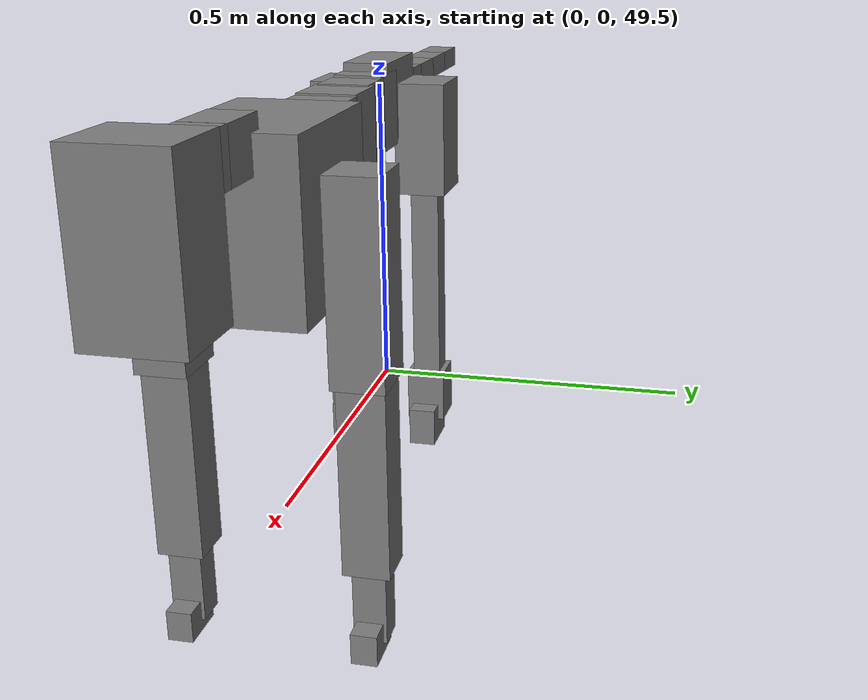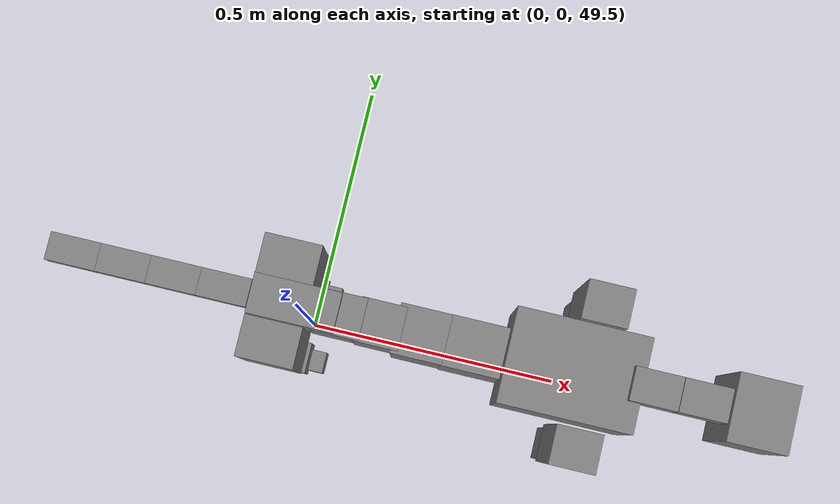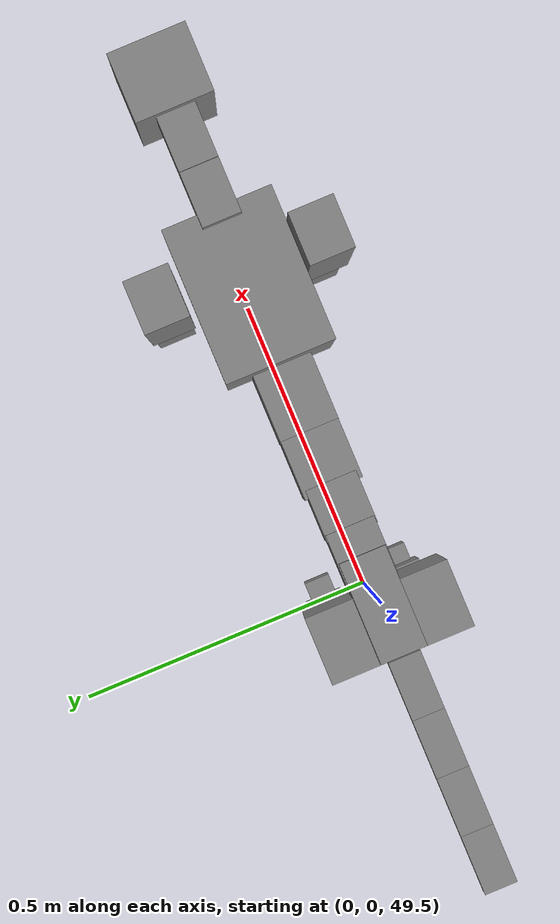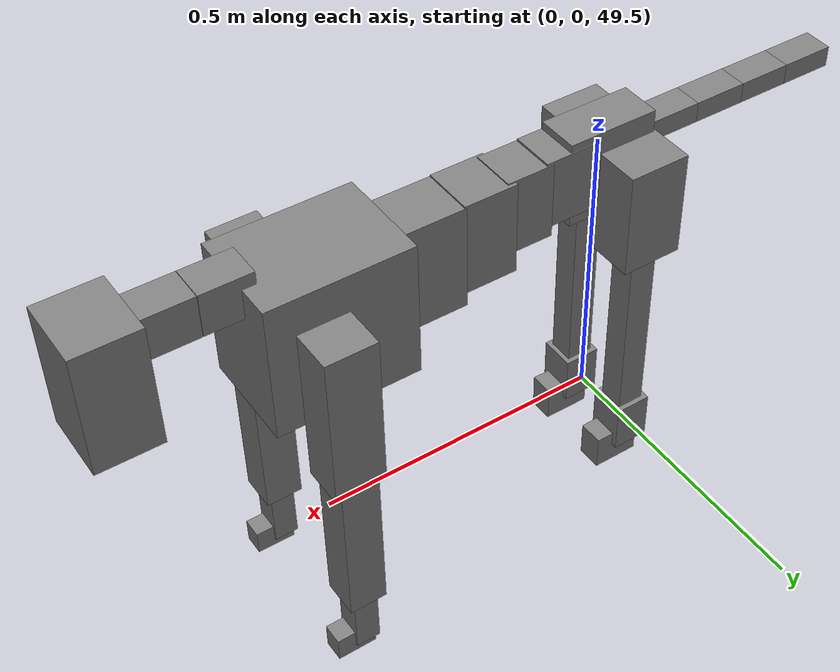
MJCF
<mujoco model="dog">

    <default>
        <joint armature="0.02" stiffness="1" damping="0.2" limited="true"/>
        <geom condim="3" friction="1 0.05 0.05" margin="0.01"/>
        <motor ctrllimited="true" ctrlrange="-1.0 1.0" forcelimited="true" gear="50"/>
    </default>

    <compiler inertiafromgeom="true" angle="radian"/>

    <option timestep="0.016" iterations="50" tolerance="1e-10" solver="Newton" jacobian="dense" cone="pyramidal"/>

    <size nconmax="20000" njmax="60000" nstack="5000000"/>
    <visual>
        <map force="0.1" zfar="30"/>
        <rgba haze="0.15 0.25 0.35 1"/>
        <quality shadowsize="2048"/>
        <global offwidth="800" offheight="800"/>
    </visual>

    <asset>
        <texture type="skybox" builtin="gradient" rgb1="0.3 0.5 0.7" rgb2="0 0 0" width="512" height="512"/>
        <texture name="texplane" type="2d" builtin="checker" rgb1=".2 .3 .4" rgb2=".1 0.15 0.2" width="512" height="512"
                 mark="cross" markrgb=".8 .8 .8"/>
        <texture name="texgeom" type="cube" builtin="flat" mark="cross" width="127" height="1278" rgb1="0.8 0.6 0.4"
                 rgb2="0.8 0.6 0.4" markrgb="1 1 1" random="0.01"/>

        <material name="matplane" reflectance="0.3" texture="texplane" texrepeat="1 1" texuniform="true"/>
        <material name="matgeom" texture="texgeom" texuniform="true" rgba="0.8 0.6 .4 1"/>
    </asset>

    <worldbody>
        <geom name="floor" pos="0 0 0" size="0 0 .25" type="plane" material="matplane" condim="3"/>

        <light directional="false" diffuse=".2 .2 .2" specular="0 0 0" pos="0 0 5" dir="0 0 -1" castshadow="false"/>
        <light mode="targetbodycom" target="torso" directional="false" diffuse=".8 .8 .8" specular="0.3 0.3 0.3"
               pos="0 0 4.0" dir="0 0 -1"/>

        <body name="root" pos="0 0 50">
            <freejoint name="root_1"/>
            <geom type="box" pos="0 0 -0.02" size="0.0774  0.0358  0.063" density="2030"/>

            <body name="spine1" pos="0.054 0 0">
                <joint name="spine1_y" axis="0 1 0" range="0 0.7" limited="true"/>
                <geom type="box" pos="0.02375 0 -0.03" size="0.04375  0.0375  0.05985" density="2030"/>

                <body name="spine2" pos="0.0612 0 0">
                    <joint name="spine2_y" axis="0 1 0" range="-0.15 0.15" limited="true"/>
                    <geom type="box" pos="0.03555  0  -0.04" size="0.04055  0.039  0.06615" density="2030"/>

                    <body name="spine3" pos="0.0730 0 0">
                        <joint name="spine3_y" axis="0 1 0" range="-0.15 0.15" limited="true"/>
                        <geom type="box" pos="0.03555  0  -0.057" size="0.04555  0.0445  0.081" density="2030"/>

                        <body name="spine4" pos="0.0780 0 0">
                            <joint name="spine4_y" axis="0 1 0" range="-0.15 0.15" limited="true"/>
                            <geom type="box" pos="0.05265  0  -0.07" size="0.05265  0.045  0.09135" density="2030"/>

                            <body name="torso" pos="0.1082 0 0">
                                <joint name="torso_y" axis="0 1 0" range="-0.15 0.15" limited="true"/>
                                <geom type="box" pos="0.11925  0  -0.085" size="0.11925  0.085  0.11745"
                                      density="2030"/>

                                <body name="neck1" pos="0.2160  0   0.0180">
                                    <joint name="neck1_y" axis="0 1 0" range="-1.2  -1" limited="true"/>
                                    <geom type="box" pos="0.0423  0  0" size="0.0423  0.03  0.036" density="2325"/>

                                    <body name="neck2" pos="0.0853  0  0">
                                        <joint name="neck2_y" axis="0 1 0" range="0.1  0" limited="true"/>
                                        <geom type="box" pos="0.0423  0  0" size="0.0423  0.03  0.036" density="2325"/>

                                        <body name="head" pos="0.0853  0  0">
                                            <joint name="head_y" axis="0 1 0" range="-0.3  -0.2" limited="true"/>
                                            <geom type="box" pos="0.0531  0  -0.055" size="0.0531  0.06  0.1044"
                                                  density="4030"/>

                                        </body>
                                    </body>
                                </body>

                                <body name="front_shoulder" pos="0.156  0   -0.0480">
                                    <joint name="front_shoulder_y" axis="0 1 0" range="-1 1.5" limited="true"/>
                                    <geom type="box" pos="0 0.13 -0.1086" size="0.0421  0.0359  0.1352" density="1158"/>
                                    <geom type="box" pos="0 -0.13 -0.1086" size="0.0421  0.0359  0.1352"
                                          density="1158"/>

                                    <body name="front_elbow" pos="0  0  -0.2172">
                                        <joint name="front_elbow_y" axis="0 1 0" range="-2 0" limited="true"/>
                                        <geom type="box" pos="0 0.13 -0.1457" size="0.0316  0.0323  0.1457"
                                              density="1081"/>
                                        <geom type="box" pos="0 -0.13 -0.1457" size="0.0316  0.0323  0.1457"
                                              density="1081"/>

                                        <body name="front_wrist" pos="0  0  -0.2914">
                                            <joint name="front_wrist_y" axis="0 1 0" range="-0.2 0" limited="true"/>
                                            <geom type="box" pos="0 0.13 -0.0450" size="0.0207  0.0230  0.0582"
                                                  density="1664"/>
                                            <geom type="box" pos="0 -0.13 -0.0450" size="0.0207  0.0230  0.0582"
                                                  density="1664"/>

                                            <body name="front_finger_end" pos="0  0  -0.0900">
                                                <joint name="front_finger_y" axis="0 1 0" range="-0.4 1"
                                                       limited="true"/>
                                                <geom type="box" pos="0.0182  0.13  -0.0071"
                                                      size="0.0335  0.0182  0.0221" density="1515"/>
                                                <geom type="box" pos="0.0182  -0.13  -0.0071"
                                                      size="0.0335  0.0182  0.0221" density="1515"/>

                                            </body>

                                        </body>
                                    </body>
                                </body>

                            </body>
                        </body>
                    </body>
                </body>
            </body>

            <body name="back_hip" pos="-0.03 0 -0.018">
                <joint name="back_hip_y" axis="0 1 0" range="-1.5 0.3" limited="true"/>
                <geom type="box" pos="0 0.07 -0.0678" size="0.0520  0.0408  0.0906" density="1154"/>
                <geom type="box" pos="0 -0.07 -0.0678" size="0.0520  0.0408  0.0906" density="1154"/>

                <body name="back_knee" pos="0  0  -0.1357">
                    <joint name="back_knee_y" axis="0 1 0" range="0 2.8" limited="true"/>
                    <geom type="box" pos="0 0.07 -0.1775" size="0.0233  0.0229  0.1931" density="1227"/>
                    <geom type="box" pos="0 -0.07 -0.1775" size="0.0233  0.0229  0.1931" density="1227"/>

                    <body name="back_ankle" pos="0  0  -0.3550">
                        <joint name="back_ankle_y" axis="0 1 0" range="-2.2 0" limited="true"/>
                        <geom type="box" pos="0 0.07 -0.0322" size="0.0316  0.0316  0.0434" density="1284"/>
                        <geom type="box" pos="0 -0.07 -0.0322" size="0.0316  0.0316  0.0434" density="1284"/>

                        <body name="back_toe_end" pos="0  0  -0.0643">
                            <joint name="back_toe_y" axis="0 1 0" range="-0.4 1" limited="true"/>
                            <geom type="box" pos="0.0219  0.07  -0.0163" size="0.0402  0.0219  0.0313" density="1515"/>
                            <geom type="box" pos="0.0219  -0.07  -0.0163" size="0.0402  0.0219  0.0313" density="1515"/>

                        </body>
                    </body>
                </body>
            </body>

            <body name="tail1" pos="-0.074 0 -0.006">
                <joint name="tail1_y" axis="0 1 0" range="-0.2 0.2" limited="true"/>
                <geom type="box" pos="-0.0536  0  0" size="0.045  0.025  0.0175" density="1587"/>

                <body name="tail2" pos="-0.09 0 0">
                    <joint name="tail2_y" axis="0 1 0" range="-0.2 0.2" limited="true"/>
                    <geom type="box" pos="-0.0536  0  0" size="0.045  0.025  0.0175" density="1587"/>

                    <body name="tail3" pos="-0.09 0 0">
                        <joint name="tail3_y" axis="0 1 0" range="-0.2 0.2" limited="true"/>
                        <geom type="box" pos="-0.0536  0  0" size="0.045  0.025  0.0175" density="1587"/>

                        <body name="tail4" pos="-0.09 0 0">
                            <joint name="tail4_y" axis="0 1 0" range="-0.2 0.2" limited="true"/>
                            <geom type="box" pos="-0.0536  0  0" size="0.045  0.025  0.0175" density="1587"/>

                        </body>
                    </body>
                </body>
            </body>
        </body>
    </worldbody>

    <actuator>
        <motor joint="spine1_y" forcerange="-150 150     "/>
        <motor joint="spine2_y" forcerange="-150 150     "/>
        <motor joint="spine3_y" forcerange="-150 150     "/>
        <motor joint="spine4_y" forcerange="-150 150     "/>
        <motor joint="torso_y" forcerange="-150 150     "/>
        <motor joint="neck1_y" forcerange="-100 100       "/>
        <motor joint="neck2_y" forcerange="-100 100       "/>
        <motor joint="head_y" forcerange="-150 150       "/>
        <motor joint="front_shoulder_y" forcerange="-184.16 155.49"/>
        <motor joint="front_elbow_y" forcerange="-176.59 158.21"/>
        <motor joint="front_wrist_y" forcerange="-127.46 56.32"/>
        <motor joint="front_finger_y" forcerange="-29.04 28.28"/>
        <motor joint="back_hip_y" forcerange="-375.56 367.80"/>
        <motor joint="back_knee_y" forcerange="-322.39 211.31"/>
        <motor joint="back_angle_y" forcerange="-210.99 194.97"/>
        <motor joint="back_toe_y" forcerange="-47.61 47.62"/>
        <motor joint="tail1_y" forcerange="-50 50     "/>
        <motor joint="tail2_y" forcerange="-50 50     "/>
        <motor joint="tail3_y" forcerange="-50 50     "/>
        <motor joint="tail4_y" forcerange="-50 50     "/>
    </actuator>
</mujoco>
